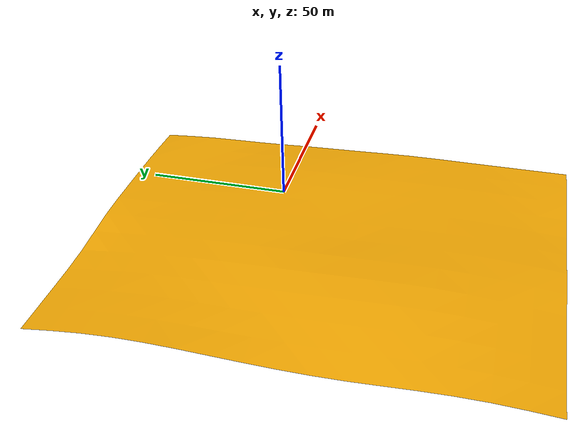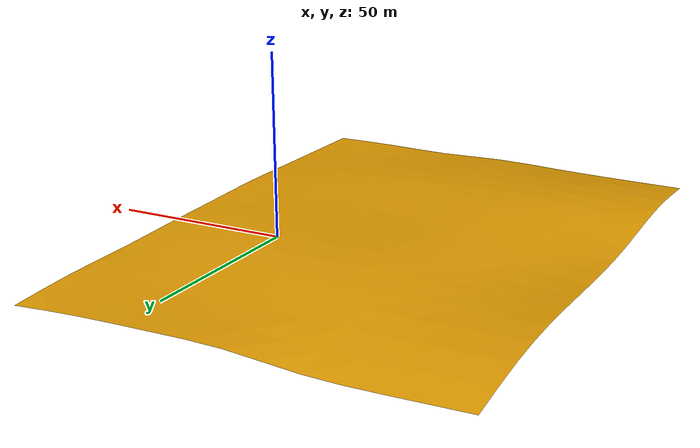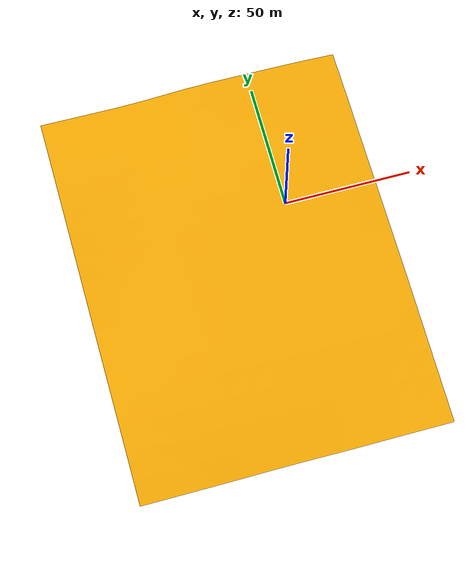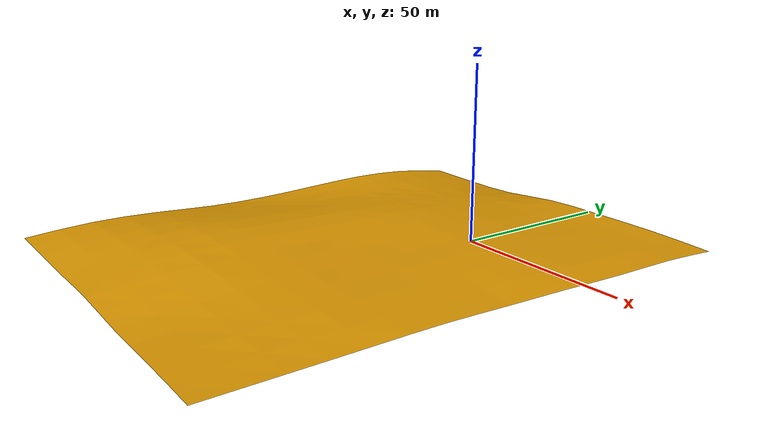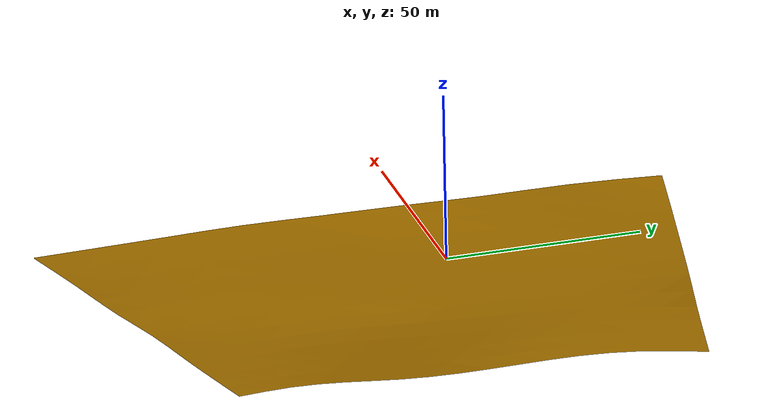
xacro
<?xml version="1.0"?>
<robot name="agriculture_world" xmlns:xacro="http://www.ros.org/wiki/xacro">
  <link name="agriculture_world_link">
    <inertial>
      <origin xyz="0 0 0" rpy="0 0 0"/>
      <mass value="1"/>
      <inertia ixx="1" ixy="0" ixz="0" iyy="1" iyz="0" izz="1"/>
    </inertial>
    <!--
      Align the world geometry so that X+ is east and Y+ is north (ENU)
    -->
    <visual>
      <origin xyz="0 0 0" rpy="0 0 ${pi}"/>
      <geometry>
        <mesh filename="package://cpr_agriculture_gazebo/meshes/agriculture_world.dae"/>
      </geometry>
    </visual>
    <collision>
      <origin xyz="0 0 0" rpy="0 0 ${pi}"/>
      <geometry>
        <mesh filename="package://cpr_agriculture_gazebo/meshes/agriculture_world.dae"/>
      </geometry>
      <surface>
        <friction>
          <ode>
            <mu>100</mu>
            <mu2>50</mu2>
          </ode>
        </friction>
    </surface>
    </collision>
  </link>

  <gazebo> <static>true</static></gazebo>
</robot>
